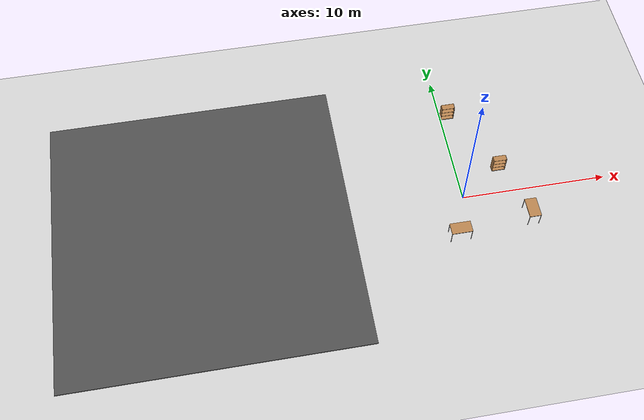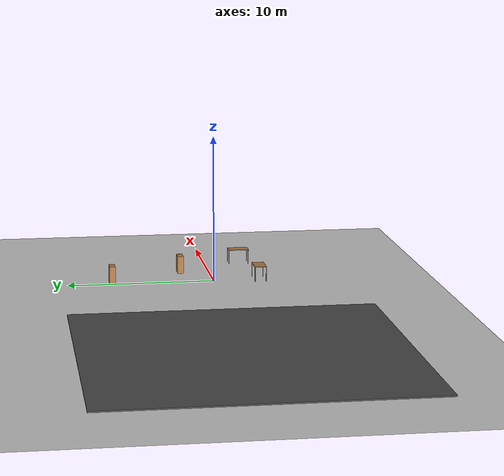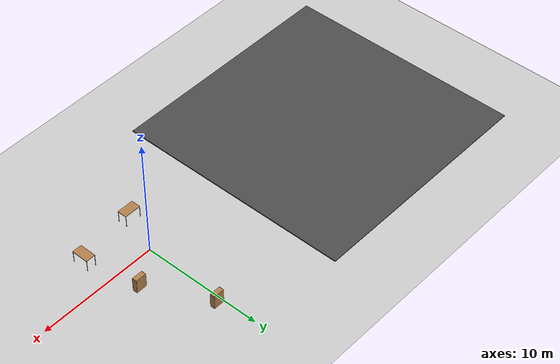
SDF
<sdf version="1.6">
 <world name="default">
  <light name="sun" type="directional">
   <pose>0 0 10 0 -0 0</pose>
   <diffuse>0.8 0.8 0.8 1</diffuse>
   <specular>0.1 0.1 0.1 1</specular>
   <attenuation>
    <range>1000</range>
    <constant>0.9</constant>
    <linear>0.01</linear>
    <quadratic>0.001</quadratic>
   </attenuation>
   <direction>-0.5 0.5 -1</direction>
  </light>
  <model name="ground_plane">
   <static>1</static>
   <link name="link">
    <collision name="collision">
     <geometry><plane><normal>0 0 1</normal><size>100 100</size></plane></geometry>
     <surface><friction><ode><mu>100</mu><mu2>50</mu2></ode></friction></surface>
    </collision>
    <visual name="visual">
     <cast_shadows>0</cast_shadows>
     <geometry><plane><normal>0 0 1</normal><size>100 100</size></plane></geometry>
     <material>
      <script><uri>file://media/materials/scripts/gazebo.material</uri><name>Gazebo/Grey</name></script>
     </material>
    </visual>
   </link>
  </model>
  <gravity>0 0 -9.8</gravity>
  <magnetic_field>6e-06 2.3e-05 -4.2e-05</magnetic_field>
  <atmosphere type="adiabatic"/>
  <physics name="default_physics" default="0" type="ode">
   <max_step_size>0.001</max_step_size>
   <real_time_factor>1</real_time_factor>
   <real_time_update_rate>1000</real_time_update_rate>
  </physics>
  <scene><ambient>0.4 0.4 0.4 1</ambient><background>0.7 0.7 0.7 1</background><shadows>1</shadows></scene>
  <spherical_coordinates>
   <surface_model>EARTH_WGS84</surface_model>
   <latitude_deg>0</latitude_deg>
   <longitude_deg>0</longitude_deg>
   <elevation>0</elevation>
   <heading_deg>0</heading_deg>
  </spherical_coordinates>
  <model name="bookshelf">
   <static>1</static>
   <link name="link">
    <inertial><mass>1</mass></inertial>
    <collision name="back">
     <pose>0 0.005 0.6 0 -0 0</pose>
     <geometry><box><size>0.9 0.01 1.2</size></box></geometry>
    </collision>
    <visual name="visual1">
     <pose>0 0.005 0.6 0 -0 0</pose>
     <geometry><box><size>0.9 0.01 1.2</size></box></geometry>
     <material>
      <script><uri>file://media/materials/scripts/gazebo.material</uri><name>Gazebo/Wood</name></script>
     </material>
    </visual>
    <collision name="left_side">
     <pose>0.45 -0.195 0.6 0 -0 0</pose>
     <geometry><box><size>0.02 0.4 1.2</size></box></geometry>
    </collision>
    <visual name="visual2">
     <pose>0.45 -0.195 0.6 0 -0 0</pose>
     <geometry><box><size>0.02 0.4 1.2</size></box></geometry>
     <material>
      <script><uri>file://media/materials/scripts/gazebo.material</uri><name>Gazebo/Wood</name></script>
     </material>
    </visual>
    <collision name="right_side">
     <pose>-0.45 -0.195 0.6 0 -0 0</pose>
     <geometry><box><size>0.02 0.4 1.2</size></box></geometry>
    </collision>
    <visual name="visual3">
     <pose>-0.45 -0.195 0.6 0 -0 0</pose>
     <geometry><box><size>0.02 0.4 1.2</size></box></geometry>
     <material>
      <script><uri>file://media/materials/scripts/gazebo.material</uri><name>Gazebo/Wood</name></script>
     </material>
    </visual>
    <collision name="bottom">
     <pose>0 -0.195 0.03 0 -0 0</pose>
     <geometry><box><size>0.88 0.4 0.06</size></box></geometry>
    </collision>
    <visual name="visual4">
     <pose>0 -0.195 0.03 0 -0 0</pose>
     <geometry><box><size>0.88 0.4 0.06</size></box></geometry>
     <material>
      <script><uri>file://media/materials/scripts/gazebo.material</uri><name>Gazebo/Wood</name></script>
     </material>
    </visual>
    <collision name="top">
     <pose>0 -0.195 1.19 0 -0 0</pose>
     <geometry><box><size>0.88 0.4 0.02</size></box></geometry>
    </collision>
    <visual name="visual5">
     <pose>0 -0.195 1.19 0 -0 0</pose>
     <geometry><box><size>0.88 0.4 0.02</size></box></geometry>
     <material>
      <script><uri>file://media/materials/scripts/gazebo.material</uri><name>Gazebo/Wood</name></script>
     </material>
    </visual>
    <collision name="low_shelf">
     <pose>0 -0.195 0.43 0 -0 0</pose>
     <geometry><box><size>0.88 0.4 0.02</size></box></geometry>
    </collision>
    <visual name="visual6">
     <pose>0 -0.195 0.43 0 -0 0</pose>
     <geometry><box><size>0.88 0.4 0.02</size></box></geometry>
     <material>
      <script><uri>file://media/materials/scripts/gazebo.material</uri><name>Gazebo/Wood</name></script>
     </material>
    </visual>
    <collision name="high_shelf">
     <pose>0 -0.195 0.8 0 -0 0</pose>
     <geometry><box><size>0.88 0.4 0.02</size></box></geometry>
    </collision>
    <visual name="visual7">
     <pose>0 -0.195 0.8 0 -0 0</pose>
     <geometry><box><size>0.88 0.4 0.02</size></box></geometry>
     <material>
      <script><uri>file://media/materials/scripts/gazebo.material</uri><name>Gazebo/Wood</name></script>
     </material>
    </visual>
   </link>
   <pose>0.492875 7.13705 0 0 -0 0</pose>
  </model>
  <model name="bookshelf_0">
   <static>1</static>
   <link name="link">
    <inertial><mass>1</mass></inertial>
    <collision name="back">
     <pose>0 0.005 0.6 0 -0 0</pose>
     <geometry><box><size>0.9 0.01 1.2</size></box></geometry>
    </collision>
    <visual name="visual1">
     <pose>0 0.005 0.6 0 -0 0</pose>
     <geometry><box><size>0.9 0.01 1.2</size></box></geometry>
     <material>
      <script><uri>file://media/materials/scripts/gazebo.material</uri><name>Gazebo/Wood</name></script>
     </material>
    </visual>
    <collision name="left_side">
     <pose>0.45 -0.195 0.6 0 -0 0</pose>
     <geometry><box><size>0.02 0.4 1.2</size></box></geometry>
    </collision>
    <visual name="visual2">
     <pose>0.45 -0.195 0.6 0 -0 0</pose>
     <geometry><box><size>0.02 0.4 1.2</size></box></geometry>
     <material>
      <script><uri>file://media/materials/scripts/gazebo.material</uri><name>Gazebo/Wood</name></script>
     </material>
    </visual>
    <collision name="right_side">
     <pose>-0.45 -0.195 0.6 0 -0 0</pose>
     <geometry><box><size>0.02 0.4 1.2</size></box></geometry>
    </collision>
    <visual name="visual3">
     <pose>-0.45 -0.195 0.6 0 -0 0</pose>
     <geometry><box><size>0.02 0.4 1.2</size></box></geometry>
     <material>
      <script><uri>file://media/materials/scripts/gazebo.material</uri><name>Gazebo/Wood</name></script>
     </material>
    </visual>
    <collision name="bottom">
     <pose>0 -0.195 0.03 0 -0 0</pose>
     <geometry><box><size>0.88 0.4 0.06</size></box></geometry>
    </collision>
    <visual name="visual4">
     <pose>0 -0.195 0.03 0 -0 0</pose>
     <geometry><box><size>0.88 0.4 0.06</size></box></geometry>
     <material>
      <script><uri>file://media/materials/scripts/gazebo.material</uri><name>Gazebo/Wood</name></script>
     </material>
    </visual>
    <collision name="top">
     <pose>0 -0.195 1.19 0 -0 0</pose>
     <geometry><box><size>0.88 0.4 0.02</size></box></geometry>
    </collision>
    <visual name="visual5">
     <pose>0 -0.195 1.19 0 -0 0</pose>
     <geometry><box><size>0.88 0.4 0.02</size></box></geometry>
     <material>
      <script><uri>file://media/materials/scripts/gazebo.material</uri><name>Gazebo/Wood</name></script>
     </material>
    </visual>
    <collision name="low_shelf">
     <pose>0 -0.195 0.43 0 -0 0</pose>
     <geometry><box><size>0.88 0.4 0.02</size></box></geometry>
    </collision>
    <visual name="visual6">
     <pose>0 -0.195 0.43 0 -0 0</pose>
     <geometry><box><size>0.88 0.4 0.02</size></box></geometry>
     <material>
      <script><uri>file://media/materials/scripts/gazebo.material</uri><name>Gazebo/Wood</name></script>
     </material>
    </visual>
    <collision name="high_shelf">
     <pose>0 -0.195 0.8 0 -0 0</pose>
     <geometry><box><size>0.88 0.4 0.02</size></box></geometry>
    </collision>
    <visual name="visual7">
     <pose>0 -0.195 0.8 0 -0 0</pose>
     <geometry><box><size>0.88 0.4 0.02</size></box></geometry>
     <material>
      <script><uri>file://media/materials/scripts/gazebo.material</uri><name>Gazebo/Wood</name></script>
     </material>
    </visual>
   </link>
   <pose>2.97837 2.1882 0 0 -0 0</pose>
  </model>
  <model name="table">
   <static>0</static>
   <link name="link">
    <collision name="surface">
     <pose>0 0 1 0 -0 0</pose>
     <geometry><box><size>1.5 0.8 0.03</size></box></geometry>
     <surface><friction><ode><mu>0.6</mu><mu2>0.6</mu2></ode></friction></surface>
    </collision>
    <visual name="visual1">
     <pose>0 0 1 0 -0 0</pose>
     <geometry><box><size>1.4 0.8 0.04</size></box></geometry>
     <material>
      <script><uri>file://media/materials/scripts/gazebo.material</uri><name>Gazebo/Wood</name></script>
     </material>
    </visual>
    <collision name="front_left_leg">
     <pose>0.68 0.38 0.5 0 -0 0</pose>
     <geometry><cylinder><radius>0.02</radius><length>1</length></cylinder></geometry>
    </collision>
    <visual name="front_left_leg">
     <pose>0.68 0.38 0.5 0 -0 0</pose>
     <geometry><cylinder><radius>0.02</radius><length>1</length></cylinder></geometry>
     <material>
      <script><uri>file://media/materials/scripts/gazebo.material</uri><name>Gazebo/Grey</name></script>
     </material>
    </visual>
    <collision name="front_right_leg">
     <pose>0.68 -0.38 0.5 0 -0 0</pose>
     <geometry><cylinder><radius>0.02</radius><length>1</length></cylinder></geometry>
    </collision>
    <visual name="front_right_leg">
     <pose>0.68 -0.38 0.5 0 -0 0</pose>
     <geometry><cylinder><radius>0.02</radius><length>1</length></cylinder></geometry>
     <material>
      <script><uri>file://media/materials/scripts/gazebo.material</uri><name>Gazebo/Grey</name></script>
     </material>
    </visual>
    <collision name="back_right_leg">
     <pose>-0.68 -0.38 0.5 0 -0 0</pose>
     <geometry><cylinder><radius>0.02</radius><length>1</length></cylinder></geometry>
    </collision>
    <visual name="back_right_leg">
     <pose>-0.68 -0.38 0.5 0 -0 0</pose>
     <geometry><cylinder><radius>0.02</radius><length>1</length></cylinder></geometry>
     <material>
      <script><uri>file://media/materials/scripts/gazebo.material</uri><name>Gazebo/Grey</name></script>
     </material>
    </visual>
    <collision name="back_left_leg">
     <pose>-0.68 0.38 0.5 0 -0 0</pose>
     <geometry><cylinder><radius>0.02</radius><length>1</length></cylinder></geometry>
    </collision>
    <visual name="back_left_leg">
     <pose>-0.68 0.38 0.5 0 -0 0</pose>
     <geometry><cylinder><radius>0.02</radius><length>1</length></cylinder></geometry>
     <material>
      <script><uri>file://media/materials/scripts/gazebo.material</uri><name>Gazebo/Grey</name></script>
     </material>
    </visual>
    <inertial>
     <inertia><ixx>1</ixx><ixy>0</ixy><ixz>0</ixz><iyy>1</iyy><iyz>0</iyz><izz>1</izz></inertia>
     <mass>1</mass>
    </inertial>
   </link>
   <pose>4.07389 -2.28021 0.289997 3e-06 -4e-06 1.56797</pose>
  </model>
  <model name="table_0">
   <static>0</static>
   <link name="link">
    <collision name="surface">
     <pose>0 0 1 0 -0 0</pose>
     <geometry><box><size>1.5 0.8 0.03</size></box></geometry>
     <surface><friction><ode><mu>0.6</mu><mu2>0.6</mu2></ode></friction></surface>
    </collision>
    <visual name="visual1">
     <pose>0 0 1 0 -0 0</pose>
     <geometry><box><size>1.4 0.8 0.04</size></box></geometry>
     <material>
      <script><uri>file://media/materials/scripts/gazebo.material</uri><name>Gazebo/Wood</name></script>
     </material>
    </visual>
    <collision name="front_left_leg">
     <pose>0.68 0.38 0.5 0 -0 0</pose>
     <geometry><cylinder><radius>0.02</radius><length>1</length></cylinder></geometry>
    </collision>
    <visual name="front_left_leg">
     <pose>0.68 0.38 0.5 0 -0 0</pose>
     <geometry><cylinder><radius>0.02</radius><length>1</length></cylinder></geometry>
     <material>
      <script><uri>file://media/materials/scripts/gazebo.material</uri><name>Gazebo/Grey</name></script>
     </material>
    </visual>
    <collision name="front_right_leg">
     <pose>0.68 -0.38 0.5 0 -0 0</pose>
     <geometry><cylinder><radius>0.02</radius><length>1</length></cylinder></geometry>
    </collision>
    <visual name="front_right_leg">
     <pose>0.68 -0.38 0.5 0 -0 0</pose>
     <geometry><cylinder><radius>0.02</radius><length>1</length></cylinder></geometry>
     <material>
      <script><uri>file://media/materials/scripts/gazebo.material</uri><name>Gazebo/Grey</name></script>
     </material>
    </visual>
    <collision name="back_right_leg">
     <pose>-0.68 -0.38 0.5 0 -0 0</pose>
     <geometry><cylinder><radius>0.02</radius><length>1</length></cylinder></geometry>
    </collision>
    <visual name="back_right_leg">
     <pose>-0.68 -0.38 0.5 0 -0 0</pose>
     <geometry><cylinder><radius>0.02</radius><length>1</length></cylinder></geometry>
     <material>
      <script><uri>file://media/materials/scripts/gazebo.material</uri><name>Gazebo/Grey</name></script>
     </material>
    </visual>
    <collision name="back_left_leg">
     <pose>-0.68 0.38 0.5 0 -0 0</pose>
     <geometry><cylinder><radius>0.02</radius><length>1</length></cylinder></geometry>
    </collision>
    <visual name="back_left_leg">
     <pose>-0.68 0.38 0.5 0 -0 0</pose>
     <geometry><cylinder><radius>0.02</radius><length>1</length></cylinder></geometry>
     <material>
      <script><uri>file://media/materials/scripts/gazebo.material</uri><name>Gazebo/Grey</name></script>
     </material>
    </visual>
    <inertial>
     <inertia><ixx>1</ixx><ixy>0</ixy><ixz>0</ixz><iyy>1</iyy><iyz>0</iyz><izz>1</izz></inertia>
     <mass>1</mass>
    </inertial>
   </link>
   <pose>-0.998812 -2.98903 0.289998 0 -0 0.001061</pose>
  </model>
  <model name="asphalt_plane">
   <static>1</static>
   <link name="link">
    <collision name="collision"><geometry><box><size>20 20 0.1</size></box></geometry></collision>
    <visual name="visual">
     <cast_shadows>0</cast_shadows>
     <geometry><box><size>20 20 0.1</size></box></geometry>
     <material>
      <script>
       <uri>model://asphalt_plane/materials/scripts</uri>
       <uri>model://asphalt_plane/materials/textures</uri>
       <name>vrc/asphalt</name>
      </script>
     </material>
    </visual>
   </link>
   <pose>-17.787 0.460669 0 0 -0 0</pose>
  </model>
 </world>
</sdf>
